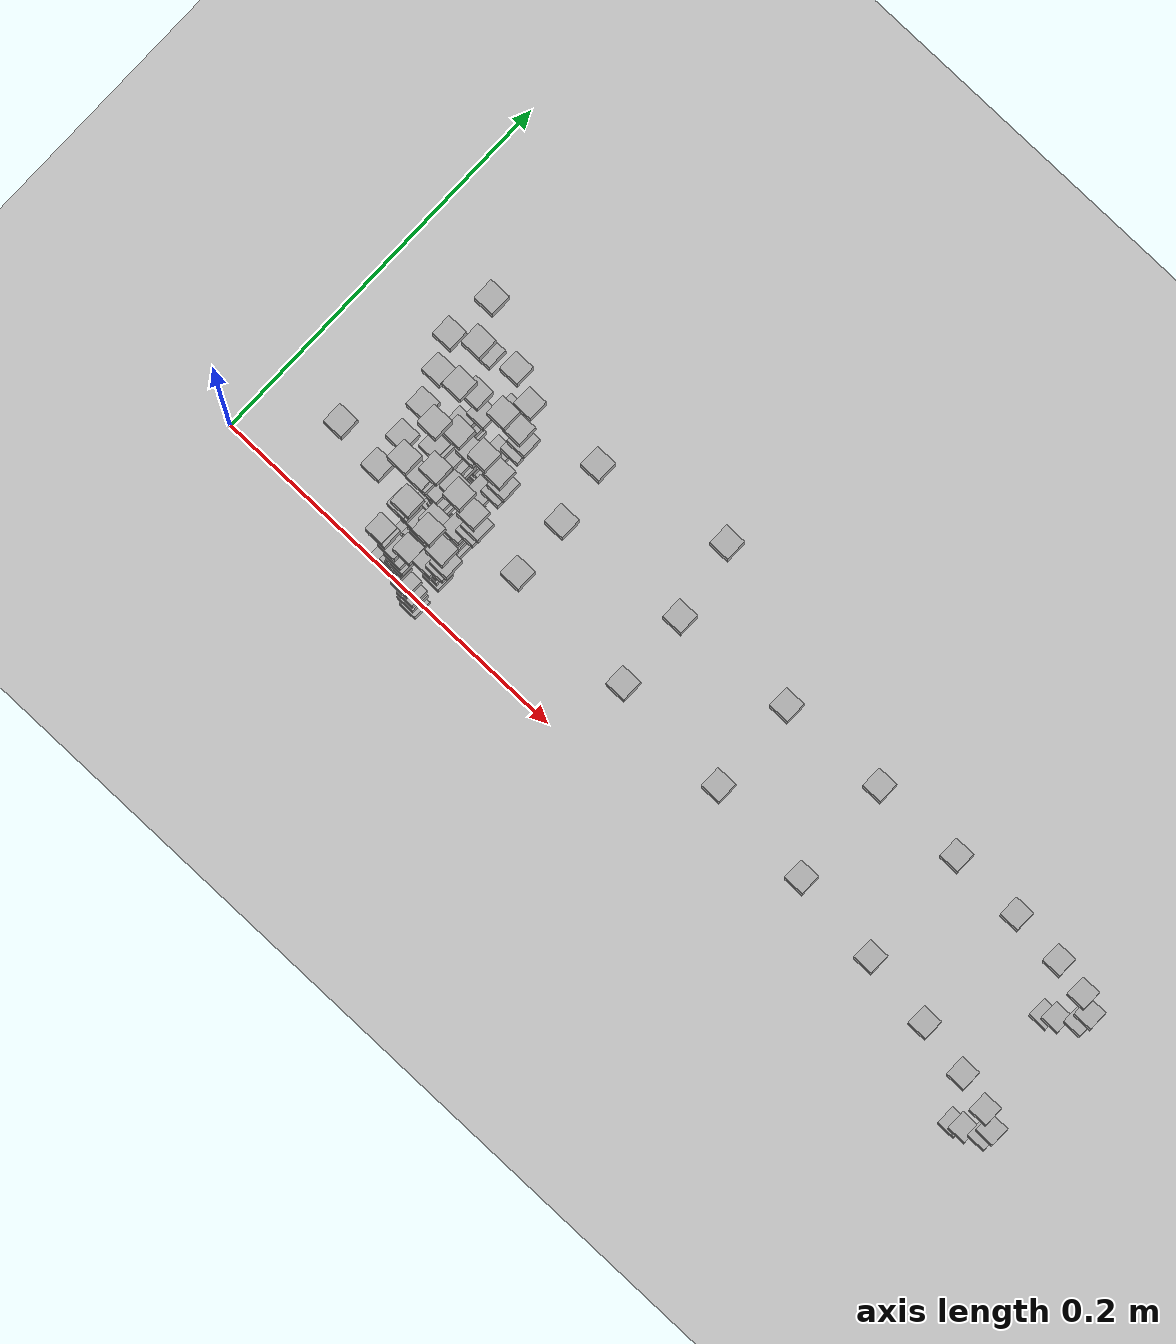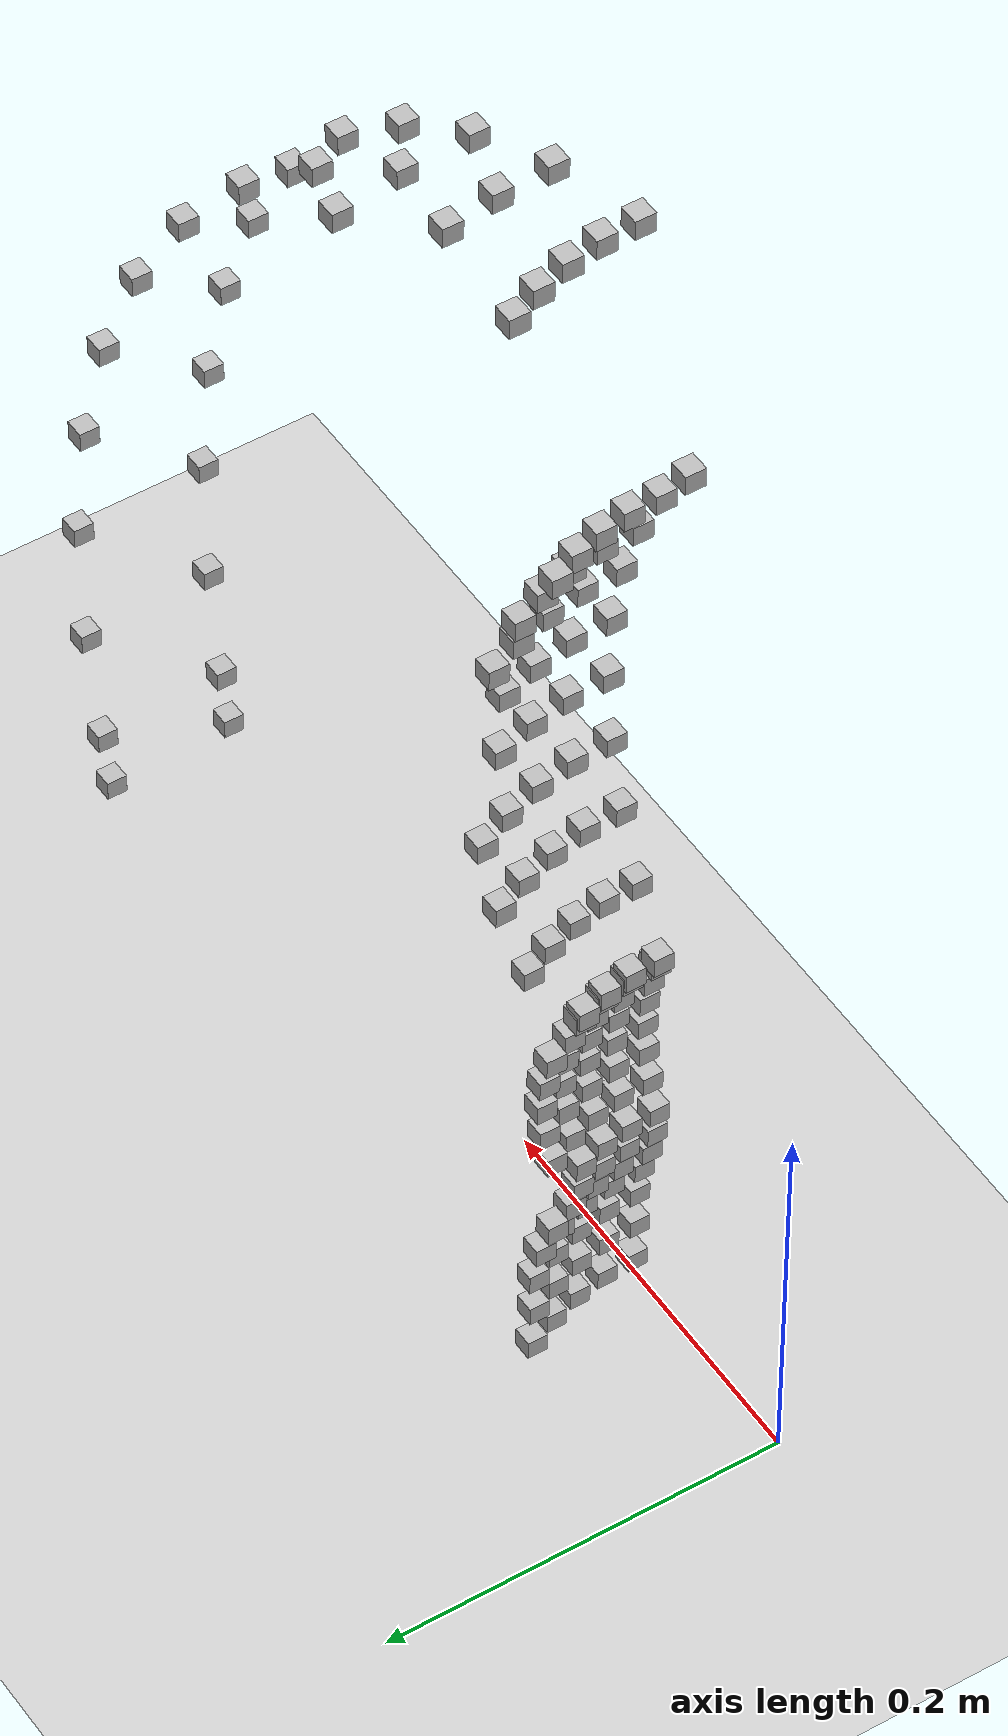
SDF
<sdf version="1.6">
 <world name="default">
  <model name="ground_plane">
   <static>1</static>
   <link name="link">
    <collision name="collision">
     <geometry><plane><normal>0 0 1</normal><size>100 100</size></plane></geometry>
     <surface>
      <contact><collide_bitmask>65535</collide_bitmask></contact>
      <friction><ode><mu>100</mu><mu2>50</mu2></ode></friction>
     </surface>
    </collision>
    <visual name="visual">
     <cast_shadows>0</cast_shadows>
     <geometry><plane><normal>0 0 1</normal><size>100 100</size></plane></geometry>
     <material>
      <script><uri>file://media/materials/scripts/gazebo.material</uri><name>Gazebo/Grey</name></script>
     </material>
    </visual>
   </link>
  </model>
  <model name="box_1685262135_65841">
   <pose>0.45965063341047574 -0.008023231650476192 0.031024085780011867 0.0 0.0 0.0</pose>
   <static>1</static>
   <link name="box_1685262135_65841_link">
    <visual name="visual"><geometry><box><size>0.01 0.01 0.01</size></box></geometry></visual>
   </link>
  </model>
  <model name="box_1685262135_658426">
   <pose>0.456293963071749 0.05602585389841087 0.031024085780011867 0.0 0.0 0.0</pose>
   <static>1</static>
   <link name="box_1685262135_658426_link">
    <visual name="visual"><geometry><box><size>0.01 0.01 0.01</size></box></geometry></visual>
   </link>
  </model>
  <model name="box_1685262135_6591437">
   <pose>0.46517764880695317 -0.008119706063080965 0.05746253559996678 0.0 0.0 0.0</pose>
   <static>1</static>
   <link name="box_1685262135_6591437_link">
    <visual name="visual"><geometry><box><size>0.01 0.01 0.01</size></box></geometry></visual>
   </link>
  </model>
  <model name="box_1685262135_6591601">
   <pose>0.46178061657748914 0.05669953023993955 0.05746253559996678 0.0 0.0 0.0</pose>
   <static>1</static>
   <link name="box_1685262135_6591601_link">
    <visual name="visual"><geometry><box><size>0.01 0.01 0.01</size></box></geometry></visual>
   </link>
  </model>
  <model name="box_1685262135_65989">
   <pose>0.4749609515579795 -0.008290474247812539 0.11486971929344875 0.0 0.0 0.0</pose>
   <static>1</static>
   <link name="box_1685262135_65989_link">
    <visual name="visual"><geometry><box><size>0.01 0.01 0.01</size></box></geometry></visual>
   </link>
  </model>
  <model name="box_1685262135_659906">
   <pose>0.4714924752364765 0.05789199654093439 0.11486971929344875 0.0 0.0 0.0</pose>
   <static>1</static>
   <link name="box_1685262135_659906_link">
    <visual name="visual"><geometry><box><size>0.01 0.01 0.01</size></box></geometry></visual>
   </link>
  </model>
  <model name="box_1685262135_6606123">
   <pose>0.47749765168593417 -0.008334752513249406 0.18152491402812204 0.0 0.0 0.0</pose>
   <static>1</static>
   <link name="box_1685262135_6606123_link">
    <visual name="visual"><geometry><box><size>0.01 0.01 0.01</size></box></geometry></visual>
   </link>
  </model>
  <model name="box_1685262135_6606283">
   <pose>0.47401065071666865 0.05820118961154624 0.18152491402812204 0.0 0.0 0.0</pose>
   <static>1</static>
   <link name="box_1685262135_6606283_link">
    <visual name="visual"><geometry><box><size>0.01 0.01 0.01</size></box></geometry></visual>
   </link>
  </model>
  <model name="box_1685262135_661348">
   <pose>0.47072656110005917 -0.008216562687438114 0.24785452819062248 0.0 0.0 0.0</pose>
   <static>1</static>
   <link name="box_1685262135_661348_link">
    <visual name="visual"><geometry><box><size>0.01 0.01 0.01</size></box></geometry></visual>
   </link>
  </model>
  <model name="box_1685262135_661369">
   <pose>0.4672890070743599 0.05737587554837956 0.24785452819062248 0.0 0.0 0.0</pose>
   <static>1</static>
   <link name="box_1685262135_661369_link">
    <visual name="visual"><geometry><box><size>0.01 0.01 0.01</size></box></geometry></visual>
   </link>
  </model>
  <model name="box_1685262135_6620953">
   <pose>0.45477508151139073 -0.007938128575516769 0.31265492137086764 0.0 0.0 0.0</pose>
   <static>1</static>
   <link name="box_1685262135_6620953_link">
    <visual name="visual"><geometry><box><size>0.01 0.01 0.01</size></box></geometry></visual>
   </link>
  </model>
  <model name="box_1685262135_6621113">
   <pose>0.45145401564974946 0.05543158307940751 0.31265492137086764 0.0 0.0 0.0</pose>
   <static>1</static>
   <link name="box_1685262135_6621113_link">
    <visual name="visual"><geometry><box><size>0.01 0.01 0.01</size></box></geometry></visual>
   </link>
  </model>
  <model name="box_1685262135_6628413">
   <pose>0.4299980428838808 -0.007505643757544629 0.37450685986133164 0.0 0.0 0.0</pose>
   <static>1</static>
   <link name="box_1685262135_6628413_link">
    <visual name="visual"><geometry><box><size>0.01 0.01 0.01</size></box></geometry></visual>
   </link>
  </model>
  <model name="box_1685262135_6628633">
   <pose>0.4268579152057146 0.05241156168646295 0.37450685986133164 0.0 0.0 0.0</pose>
   <static>1</static>
   <link name="box_1685262135_6628633_link">
    <visual name="visual"><geometry><box><size>0.01 0.01 0.01</size></box></geometry></visual>
   </link>
  </model>
  <model name="box_1685262135_6635816">
   <pose>0.11814432360705267 -0.002062216839461454 0.005648136022940203 0.0 0.0 0.0</pose>
   <static>1</static>
   <link name="box_1685262135_6635816_link">
    <visual name="visual"><geometry><box><size>0.01 0.01 0.01</size></box></geometry></visual>
   </link>
  </model>
  <model name="box_1685262135_6635978">
   <pose>0.11728155628353507 0.014400364390283145 0.005648136022940203 0.0 0.0 0.0</pose>
   <static>1</static>
   <link name="box_1685262135_6635978_link">
    <visual name="visual"><geometry><box><size>0.01 0.01 0.01</size></box></geometry></visual>
   </link>
  </model>
  <model name="box_1685262135_6636138">
   <pose>0.11413603687275145 0.030582658907342592 0.005648136022940203 0.0 0.0 0.0</pose>
   <static>1</static>
   <link name="box_1685262135_6636138_link">
    <visual name="visual"><geometry><box><size>0.01 0.01 0.01</size></box></geometry></visual>
   </link>
  </model>
  <model name="box_1685262135_6636298">
   <pose>0.1087689893320574 0.04616969675602952 0.005648136022940203 0.0 0.0 0.0</pose>
   <static>1</static>
   <link name="box_1685262135_6636298_link">
    <visual name="visual"><geometry><box><size>0.01 0.01 0.01</size></box></geometry></visual>
   </link>
  </model>
  <model name="box_1685262135_6636457">
   <pose>0.10128487713690645 0.060858093974612004 0.005648136022940203 0.0 0.0 0.0</pose>
   <static>1</static>
   <link name="box_1685262135_6636457_link">
    <visual name="visual"><geometry><box><size>0.01 0.01 0.01</size></box></geometry></visual>
   </link>
  </model>
  <model name="box_1685262135_6643064">
   <pose>0.396794296954735 -0.006926070216491348 0.4324042100445494 0.0 0.0 0.0</pose>
   <static>1</static>
   <link name="box_1685262135_6643064_link">
    <visual name="visual"><geometry><box><size>0.01 0.01 0.01</size></box></geometry></visual>
   </link>
  </model>
  <model name="box_1685262135_6643305">
   <pose>0.3938966448025308 0.04836442657320612 0.4324042100445494 0.0 0.0 0.0</pose>
   <static>1</static>
   <link name="box_1685262135_6643305_link">
    <visual name="visual"><geometry><box><size>0.01 0.01 0.01</size></box></geometry></visual>
   </link>
  </model>
  <model name="box_1685262135_6650493">
   <pose>0.11754053076730298 -0.00205167759624043 0.02920890265866033 0.0 0.0 0.0</pose>
   <static>1</static>
   <link name="box_1685262135_6650493_link">
    <visual name="visual"><geometry><box><size>0.01 0.01 0.01</size></box></geometry></visual>
   </link>
  </model>
  <model name="box_1685262135_6650662">
   <pose>0.1166821727350353 0.014326769344468176 0.02920890265866033 0.0 0.0 0.0</pose>
   <static>1</static>
   <link name="box_1685262135_6650662_link">
    <visual name="visual"><geometry><box><size>0.01 0.01 0.01</size></box></geometry></visual>
   </link>
  </model>
  <model name="box_1685262135_6650822">
   <pose>0.11355272893448448 0.030426362016345295 0.02920890265866033 0.0 0.0 0.0</pose>
   <static>1</static>
   <link name="box_1685262135_6650822_link">
    <visual name="visual"><geometry><box><size>0.01 0.01 0.01</size></box></geometry></visual>
   </link>
  </model>
  <model name="box_1685262135_6650982">
   <pose>0.10821311042953867 0.04593374016104808 0.02920890265866033 0.0 0.0 0.0</pose>
   <static>1</static>
   <link name="box_1685262135_6650982_link">
    <visual name="visual"><geometry><box><size>0.01 0.01 0.01</size></box></geometry></visual>
   </link>
  </model>
  <model name="box_1685262135_6651144">
   <pose>0.10076724682067058 0.06054707030237108 0.02920890265866033 0.0 0.0 0.0</pose>
   <static>1</static>
   <link name="box_1685262135_6651144_link">
    <visual name="visual"><geometry><box><size>0.01 0.01 0.01</size></box></geometry></visual>
   </link>
  </model>
  <model name="box_1685262135_665789">
   <pose>0.3558031404243957 -0.006210566917771546 0.4851615351605009 0.0 0.0 0.0</pose>
   <static>1</static>
   <link name="box_1685262135_665789_link">
    <visual name="visual"><geometry><box><size>0.01 0.01 0.01</size></box></geometry></visual>
   </link>
  </model>
  <model name="box_1685262135_6658056">
   <pose>0.3532048325769183 0.04336810027674085 0.4851615351605009 0.0 0.0 0.0</pose>
   <static>1</static>
   <link name="box_1685262135_6658056_link">
    <visual name="visual"><geometry><box><size>0.01 0.01 0.01</size></box></geometry></visual>
   </link>
  </model>
  <model name="box_1685262135_6665294">
   <pose>0.11781227743468152 -0.0020564209519635494 0.05028140928145608 0.0 0.0 0.0</pose>
   <static>1</static>
   <link name="box_1685262135_6665294_link">
    <visual name="visual"><geometry><box><size>0.01 0.01 0.01</size></box></geometry></visual>
   </link>
  </model>
  <model name="box_1685262135_6665466">
   <pose>0.11695193493005215 0.014359891977131525 0.05028140928145608 0.0 0.0 0.0</pose>
   <static>1</static>
   <link name="box_1685262135_6665466_link">
    <visual name="visual"><geometry><box><size>0.01 0.01 0.01</size></box></geometry></visual>
   </link>
  </model>
  <model name="box_1685262135_6665628">
   <pose>0.1138152560428636 0.030496705943026756 0.05028140928145608 0.0 0.0 0.0</pose>
   <static>1</static>
   <link name="box_1685262135_6665628_link">
    <visual name="visual"><geometry><box><size>0.01 0.01 0.01</size></box></geometry></visual>
   </link>
  </model>
  <model name="box_1685262135_666579">
   <pose>0.10846329265973559 0.04603993621722983 0.05028140928145608 0.0 0.0 0.0</pose>
   <static>1</static>
   <link name="box_1685262135_666579_link">
    <visual name="visual"><geometry><box><size>0.01 0.01 0.01</size></box></geometry></visual>
   </link>
  </model>
  <model name="box_1685262135_6665947">
   <pose>0.1010002146601526 0.06068705150261577 0.05028140928145608 0.0 0.0 0.0</pose>
   <static>1</static>
   <link name="box_1685262135_6665947_link">
    <visual name="visual"><geometry><box><size>0.01 0.01 0.01</size></box></geometry></visual>
   </link>
  </model>
  <model name="box_1685262135_6672573">
   <pose>0.3078549334683411 -0.005373627852161999 0.5316791207351375 0.0 0.0 0.0</pose>
   <static>1</static>
   <link name="box_1685262135_6672573_link">
    <visual name="visual"><geometry><box><size>0.01 0.01 0.01</size></box></geometry></visual>
   </link>
  </model>
  <model name="box_1685262135_6672742">
   <pose>0.3056067748698495 0.03752379366134729 0.5316791207351375 0.0 0.0 0.0</pose>
   <static>1</static>
   <link name="box_1685262135_6672742_link">
    <visual name="visual"><geometry><box><size>0.01 0.01 0.01</size></box></geometry></visual>
   </link>
  </model>
  <model name="box_1685262135_6679976">
   <pose>0.11488106693972355 -0.002005256482455785 0.06994559093984248 0.0 0.0 0.0</pose>
   <static>1</static>
   <link name="box_1685262135_6679976_link">
    <visual name="visual"><geometry><box><size>0.01 0.01 0.01</size></box></geometry></visual>
   </link>
  </model>
  <model name="box_1685262135_6680164">
   <pose>0.11404213005625473 0.014002612863389175 0.06994559093984248 0.0 0.0 0.0</pose>
   <static>1</static>
   <link name="box_1685262135_6680164_link">
    <visual name="visual"><geometry><box><size>0.01 0.01 0.01</size></box></geometry></visual>
   </link>
  </model>
  <model name="box_1685262135_6680331">
   <pose>0.1109834928322412 0.029737937277584323 0.06994559093984248 0.0 0.0 0.0</pose>
   <static>1</static>
   <link name="box_1685262135_6680331_link">
    <visual name="visual"><geometry><box><size>0.01 0.01 0.01</size></box></geometry></visual>
   </link>
  </model>
  <model name="box_1685262135_6680493">
   <pose>0.10576468816210008 0.04489444656907358 0.06994559093984248 0.0 0.0 0.0</pose>
   <static>1</static>
   <link name="box_1685262135_6680493_link">
    <visual name="visual"><geometry><box><size>0.01 0.01 0.01</size></box></geometry></visual>
   </link>
  </model>
  <model name="box_1685262135_6680655">
   <pose>0.09848729414243332 0.0591771365247719 0.06994559093984248 0.0 0.0 0.0</pose>
   <static>1</static>
   <link name="box_1685262135_6680655_link">
    <visual name="visual"><geometry><box><size>0.01 0.01 0.01</size></box></geometry></visual>
   </link>
  </model>
  <model name="box_1685262135_6687288">
   <pose>0.2539392098049922 -0.004432525394966406 0.5710245451470004 0.0 0.0 0.0</pose>
   <static>1</static>
   <link name="box_1685262135_6687288_link">
    <visual name="visual"><geometry><box><size>0.01 0.01 0.01</size></box></geometry></visual>
   </link>
  </model>
  <model name="box_1685262135_6687472">
   <pose>0.25208477917565175 0.030952118921388064 0.5710245451470004 0.0 0.0 0.0</pose>
   <static>1</static>
   <link name="box_1685262135_6687472_link">
    <visual name="visual"><geometry><box><size>0.01 0.01 0.01</size></box></geometry></visual>
   </link>
  </model>
  <model name="box_1685262135_668764">
   <pose>0.2453238050618436 0.06573431545045115 0.5710245451470004 0.0 0.0 0.0</pose>
   <static>1</static>
   <link name="box_1685262135_668764_link">
    <visual name="visual"><geometry><box><size>0.01 0.01 0.01</size></box></geometry></visual>
   </link>
  </model>
  <model name="box_1685262135_6696692">
   <pose>0.10923046754161435 -0.0019066249030784419 0.08776207523471741 0.0 0.0 0.0</pose>
   <static>1</static>
   <link name="box_1685262135_6696692_link">
    <visual name="visual"><geometry><box><size>0.01 0.01 0.01</size></box></geometry></visual>
   </link>
  </model>
  <model name="box_1685262135_6696866">
   <pose>0.10843279504030233 0.013313873126498173 0.08776207523471741 0.0 0.0 0.0</pose>
   <static>1</static>
   <link name="box_1685262135_6696866_link">
    <visual name="visual"><geometry><box><size>0.01 0.01 0.01</size></box></geometry></visual>
   </link>
  </model>
  <model name="box_1685262135_6697059">
   <pose>0.10552460152400708 0.028275231759973717 0.08776207523471741 0.0 0.0 0.0</pose>
   <static>1</static>
   <link name="box_1685262135_6697059_link">
    <visual name="visual"><geometry><box><size>0.01 0.01 0.01</size></box></geometry></visual>
   </link>
  </model>
  <model name="box_1685262135_669724">
   <pose>0.1005624916715022 0.0426862451698408 0.08776207523471741 0.0 0.0 0.0</pose>
   <static>1</static>
   <link name="box_1685262135_669724_link">
    <visual name="visual"><geometry><box><size>0.01 0.01 0.01</size></box></geometry></visual>
   </link>
  </model>
  <model name="box_1685262135_6697402">
   <pose>0.09364304730675037 0.05626641937236115 0.08776207523471741 0.0 0.0 0.0</pose>
   <static>1</static>
   <link name="box_1685262135_6697402_link">
    <visual name="visual"><geometry><box><size>0.01 0.01 0.01</size></box></geometry></visual>
   </link>
  </model>
  <model name="box_1685262135_6705096">
   <pose>0.1949537700088561 -0.0034029307135053813 0.6025204345093003 0.0 0.0 0.0</pose>
   <static>1</static>
   <link name="box_1685262135_6705096_link">
    <visual name="visual"><geometry><box><size>0.01 0.01 0.01</size></box></geometry></visual>
   </link>
  </model>
  <model name="box_1685262135_6705265">
   <pose>0.193530089740309 0.02376250709026356 0.6025204345093003 0.0 0.0 0.0</pose>
   <static>1</static>
   <link name="box_1685262135_6705265_link">
    <visual name="visual"><geometry><box><size>0.01 0.01 0.01</size></box></geometry></visual>
   </link>
  </model>
  <model name="box_1685262135_6705453">
   <pose>0.18833956641218105 0.050465434722971714 0.6025204345093003 0.0 0.0 0.0</pose>
   <static>1</static>
   <link name="box_1685262135_6705453_link">
    <visual name="visual"><geometry><box><size>0.01 0.01 0.01</size></box></geometry></visual>
   </link>
  </model>
  <model name="box_1685262135_6713073">
   <pose>0.10560265455620015 -0.001843301191870606 0.10333120046485805 0.0 0.0 0.0</pose>
   <static>1</static>
   <link name="box_1685262135_6713073_link">
    <visual name="visual"><geometry><box><size>0.01 0.01 0.01</size></box></geometry></visual>
   </link>
  </model>
  <model name="box_1685262135_6713243">
   <pose>0.10483147472422752 0.012871686592818218 0.10333120046485805 0.0 0.0 0.0</pose>
   <static>1</static>
   <link name="box_1685262135_6713243_link">
    <visual name="visual"><geometry><box><size>0.01 0.01 0.01</size></box></geometry></visual>
   </link>
  </model>
  <model name="box_1685262135_6713457">
   <pose>0.10201986948078293 0.027336141639304323 0.10333120046485805 0.0 0.0 0.0</pose>
   <static>1</static>
   <link name="box_1685262135_6713457_link">
    <visual name="visual"><geometry><box><size>0.01 0.01 0.01</size></box></geometry></visual>
   </link>
  </model>
  <model name="box_1685262135_671376">
   <pose>0.09722256352377644 0.041268529783181615 0.10333120046485805 0.0 0.0 0.0</pose>
   <static>1</static>
   <link name="box_1685262135_671376_link">
    <visual name="visual"><geometry><box><size>0.01 0.01 0.01</size></box></geometry></visual>
   </link>
  </model>
  <model name="box_1685262135_6720765">
   <pose>0.13223202120480723 -0.002308118515719355 0.6254485040649695 0.0 0.0 0.0</pose>
   <static>1</static>
   <link name="box_1685262135_6720765_link">
    <visual name="visual"><geometry><box><size>0.01 0.01 0.01</size></box></geometry></visual>
   </link>
  </model>
  <model name="box_1685262135_672093">
   <pose>0.13126637627549484 0.016117484372302086 0.6254485040649695 0.0 0.0 0.0</pose>
   <static>1</static>
   <link name="box_1685262135_672093_link">
    <visual name="visual"><geometry><box><size>0.01 0.01 0.01</size></box></geometry></visual>
   </link>
  </model>
  <model name="box_1685262135_6721091">
   <pose>0.1277457806452699 0.03422937876038341 0.6254485040649695 0.0 0.0 0.0</pose>
   <static>1</static>
   <link name="box_1685262135_6721091_link">
    <visual name="visual"><geometry><box><size>0.01 0.01 0.01</size></box></geometry></visual>
   </link>
  </model>
  <model name="box_1685262135_6721277">
   <pose>0.12173875870345653 0.05167503722623512 0.6254485040649695 0.0 0.0 0.0</pose>
   <static>1</static>
   <link name="box_1685262135_6721277_link">
    <visual name="visual"><geometry><box><size>0.01 0.01 0.01</size></box></geometry></visual>
   </link>
  </model>
  <model name="box_1685262135_672145">
   <pose>0.11336223029926597 0.0681148998719618 0.6254485040649695 0.0 0.0 0.0</pose>
   <static>1</static>
   <link name="box_1685262135_672145_link">
    <visual name="visual"><geometry><box><size>0.01 0.01 0.01</size></box></geometry></visual>
   </link>
  </model>
  <model name="box_1685262135_6728663">
   <pose>0.10439815759678209 -0.0018222766192381233 0.1175214826546544 0.0 0.0 0.0</pose>
   <static>1</static>
   <link name="box_1685262135_6728663_link">
    <visual name="visual"><geometry><box><size>0.01 0.01 0.01</size></box></geometry></visual>
   </link>
  </model>
  <model name="box_1685262135_6728845">
   <pose>0.10363577379144989 0.012724872978815922 0.1175214826546544 0.0 0.0 0.0</pose>
   <static>1</static>
   <link name="box_1685262135_6728845_link">
    <visual name="visual"><geometry><box><size>0.01 0.01 0.01</size></box></geometry></visual>
   </link>
  </model>
  <model name="box_1685262135_6729012">
   <pose>0.10085623753321257 0.027024347398665795 0.1175214826546544 0.0 0.0 0.0</pose>
   <static>1</static>
   <link name="box_1685262135_6729012_link">
    <visual name="visual"><geometry><box><size>0.01 0.01 0.01</size></box></geometry></visual>
   </link>
  </model>
  <model name="box_1685262135_672918">
   <pose>0.09611364933366111 0.04079782363614019 0.1175214826546544 0.0 0.0 0.0</pose>
   <static>1</static>
   <link name="box_1685262135_672918_link">
    <visual name="visual"><geometry><box><size>0.01 0.01 0.01</size></box></geometry></visual>
   </link>
  </model>
  <model name="box_1685262135_674398">
   <pose>0.11020626320963565 -0.0019236574798204272 0.13255102465284446 0.0 0.0 0.0</pose>
   <static>1</static>
   <link name="box_1685262135_674398_link">
    <visual name="visual"><geometry><box><size>0.01 0.01 0.01</size></box></geometry></visual>
   </link>
  </model>
  <model name="box_1685262135_6744149">
   <pose>0.1094014648084827 0.013432810818644118 0.13255102465284446 0.0 0.0 0.0</pose>
   <static>1</static>
   <link name="box_1685262135_6744149_link">
    <visual name="visual"><geometry><box><size>0.01 0.01 0.01</size></box></geometry></visual>
   </link>
  </model>
  <model name="box_1685262135_674432">
   <pose>0.10646729133715442 0.028527824734119592 0.13255102465284446 0.0 0.0 0.0</pose>
   <static>1</static>
   <link name="box_1685262135_674432_link">
    <visual name="visual"><geometry><box><size>0.01 0.01 0.01</size></box></geometry></visual>
   </link>
  </model>
  <model name="box_1685262135_674448">
   <pose>0.10146085314469735 0.0430675769910651 0.13255102465284446 0.0 0.0 0.0</pose>
   <static>1</static>
   <link name="box_1685262135_674448_link">
    <visual name="visual"><geometry><box><size>0.01 0.01 0.01</size></box></geometry></visual>
   </link>
  </model>
  <model name="box_1685262135_674464">
   <pose>0.09447959485578863 0.05676906785052226 0.13255102465284446 0.0 0.0 0.0</pose>
   <static>1</static>
   <link name="box_1685262135_674464_link">
    <visual name="visual"><geometry><box><size>0.01 0.01 0.01</size></box></geometry></visual>
   </link>
  </model>
  <model name="box_1685262135_675958">
   <pose>0.11384427512858478 -0.0019871592140753135 0.14825398363050718 0.0 0.0 0.0</pose>
   <static>1</static>
   <link name="box_1685262135_675958_link">
    <visual name="visual"><geometry><box><size>0.01 0.01 0.01</size></box></geometry></visual>
   </link>
  </model>
  <model name="box_1685262135_6759756">
   <pose>0.11301290957879186 0.013876240478991619 0.14825398363050718 0.0 0.0 0.0</pose>
   <static>1</static>
   <link name="box_1685262135_6759756_link">
    <visual name="visual"><geometry><box><size>0.01 0.01 0.01</size></box></geometry></visual>
   </link>
  </model>
  <model name="box_1685262135_675992">
   <pose>0.10998187629432708 0.029469554935124577 0.14825398363050718 0.0 0.0 0.0</pose>
   <static>1</static>
   <link name="box_1685262135_675992_link">
    <visual name="visual"><geometry><box><size>0.01 0.01 0.01</size></box></geometry></visual>
   </link>
  </model>
  <model name="box_1685262135_6760085">
   <pose>0.1048101708903233 0.044489278025567236 0.14825398363050718 0.0 0.0 0.0</pose>
   <static>1</static>
   <link name="box_1685262135_6760085_link">
    <visual name="visual"><geometry><box><size>0.01 0.01 0.01</size></box></geometry></visual>
   </link>
  </model>
  <model name="box_1685262135_676025">
   <pose>0.09759845472974171 0.05864306792504592 0.14825398363050718 0.0 0.0 0.0</pose>
   <static>1</static>
   <link name="box_1685262135_676025_link">
    <visual name="visual"><geometry><box><size>0.01 0.01 0.01</size></box></geometry></visual>
   </link>
  </model>
  <model name="box_1685262135_6767972">
   <pose>0.11523906343915395 -0.0020115053345974173 0.16428489958480497 0.0 0.0 0.0</pose>
   <static>1</static>
   <link name="box_1685262135_6767972_link">
    <visual name="visual"><geometry><box><size>0.01 0.01 0.01</size></box></geometry></visual>
   </link>
  </model>
  <model name="box_1685262135_6768162">
   <pose>0.11439751223049191 0.014046248307605607 0.16428489958480497 0.0 0.0 0.0</pose>
   <static>1</static>
   <link name="box_1685262135_6768162_link">
    <visual name="visual"><geometry><box><size>0.01 0.01 0.01</size></box></geometry></visual>
   </link>
  </model>
  <model name="box_1685262135_6768422">
   <pose>0.11132934357150485 0.029830607703871727 0.16428489958480497 0.0 0.0 0.0</pose>
   <static>1</static>
   <link name="box_1685262135_6768422_link">
    <visual name="visual"><geometry><box><size>0.01 0.01 0.01</size></box></geometry></visual>
   </link>
  </model>
  <model name="box_1685262135_6768606">
   <pose>0.10609427587514983 0.04503434825299532 0.16428489958480497 0.0 0.0 0.0</pose>
   <static>1</static>
   <link name="box_1685262135_6768606_link">
    <visual name="visual"><geometry><box><size>0.01 0.01 0.01</size></box></geometry></visual>
   </link>
  </model>
  <model name="box_1685262135_676877">
   <pose>0.09879420377933514 0.059361546439186244 0.16428489958480497 0.0 0.0 0.0</pose>
   <static>1</static>
   <link name="box_1685262135_676877_link">
    <visual name="visual"><geometry><box><size>0.01 0.01 0.01</size></box></geometry></visual>
   </link>
  </model>
  <model name="box_1685262135_6775537">
   <pose>0.11440091782557253 -0.001996875448493053 0.18035913689155542 0.0 0.0 0.0</pose>
   <static>1</static>
   <link name="box_1685262135_6775537_link">
    <visual name="visual"><geometry><box><size>0.01 0.01 0.01</size></box></geometry></visual>
   </link>
  </model>
  <model name="box_1685262135_67757">
   <pose>0.1135654873057906 0.013944088492565882 0.18035913689155542 0.0 0.0 0.0</pose>
   <static>1</static>
   <link name="box_1685262135_67757_link">
    <visual name="visual"><geometry><box><size>0.01 0.01 0.01</size></box></geometry></visual>
   </link>
  </model>
  <model name="box_1685262135_677586">
   <pose>0.11051963375442862 0.029613646612282597 0.18035913689155542 0.0 0.0 0.0</pose>
   <static>1</static>
   <link name="box_1685262135_677586_link">
    <visual name="visual"><geometry><box><size>0.01 0.01 0.01</size></box></geometry></visual>
   </link>
  </model>
  <model name="box_1685262135_6776023">
   <pose>0.10532264124625679 0.04470680878571498 0.18035913689155542 0.0 0.0 0.0</pose>
   <static>1</static>
   <link name="box_1685262135_6776023_link">
    <visual name="visual"><geometry><box><size>0.01 0.01 0.01</size></box></geometry></visual>
   </link>
  </model>
  <model name="box_1685262135_6776185">
   <pose>0.09807566332895531 0.058929803779374686 0.18035913689155542 0.0 0.0 0.0</pose>
   <static>1</static>
   <link name="box_1685262135_6776185_link">
    <visual name="visual"><geometry><box><size>0.01 0.01 0.01</size></box></geometry></visual>
   </link>
  </model>
  <model name="box_1685262135_6782932">
   <pose>0.1113315079367901 -0.0019432986995930426 0.19617448160834577 0.0 0.0 0.0</pose>
   <static>1</static>
   <link name="box_1685262135_6782932_link">
    <visual name="visual"><geometry><box><size>0.01 0.01 0.01</size></box></geometry></visual>
   </link>
  </model>
  <model name="box_1685262135_678315">
   <pose>0.11051849226076596 0.013569964543889208 0.19617448160834577 0.0 0.0 0.0</pose>
   <static>1</static>
   <link name="box_1685262135_678315_link">
    <visual name="visual"><geometry><box><size>0.01 0.01 0.01</size></box></geometry></visual>
   </link>
  </model>
  <model name="box_1685262135_6783404">
   <pose>0.1075543598458077 0.02881910386313054 0.19617448160834577 0.0 0.0 0.0</pose>
   <static>1</static>
   <link name="box_1685262135_6783404_link">
    <visual name="visual"><geometry><box><size>0.01 0.01 0.01</size></box></geometry></visual>
   </link>
  </model>
  <model name="box_1685262135_6783586">
   <pose>0.1024968041577218 0.04350731210692081 0.19617448160834577 0.0 0.0 0.0</pose>
   <static>1</static>
   <link name="box_1685262135_6783586_link">
    <visual name="visual"><geometry><box><size>0.01 0.01 0.01</size></box></geometry></visual>
   </link>
  </model>
  <model name="box_1685262135_6783748">
   <pose>0.09544426476509256 0.05734870000938388 0.19617448160834577 0.0 0.0 0.0</pose>
   <static>1</static>
   <link name="box_1685262135_6783748_link">
    <visual name="visual"><geometry><box><size>0.01 0.01 0.01</size></box></geometry></visual>
   </link>
  </model>
  <model name="box_1685262135_679046">
   <pose>0.10607680992834241 -0.0018515776046774124 0.2113835132273968 0.0 0.0 0.0</pose>
   <static>1</static>
   <link name="box_1685262135_679046_link">
    <visual name="visual"><geometry><box><size>0.01 0.01 0.01</size></box></geometry></visual>
   </link>
  </model>
  <model name="box_1685262135_6790626">
   <pose>0.10530216750291742 0.012929480398969824 0.2113835132273968 0.0 0.0 0.0</pose>
   <static>1</static>
   <link name="box_1685262135_6790626_link">
    <visual name="visual"><geometry><box><size>0.01 0.01 0.01</size></box></geometry></visual>
   </link>
  </model>
  <model name="box_1685262135_6790786">
   <pose>0.10247793816648837 0.027458880773717085 0.2113835132273968 0.0 0.0 0.0</pose>
   <static>1</static>
   <link name="box_1685262135_6790786_link">
    <visual name="visual"><geometry><box><size>0.01 0.01 0.01</size></box></geometry></visual>
   </link>
  </model>
  <model name="box_1685262135_6790948">
   <pose>0.09765909233057557 0.04145382526821788 0.2113835132273968 0.0 0.0 0.0</pose>
   <static>1</static>
   <link name="box_1685262135_6790948_link">
    <visual name="visual"><geometry><box><size>0.01 0.01 0.01</size></box></geometry></visual>
   </link>
  </model>
  <model name="box_1685262135_6797843">
   <pose>0.10443935289668506 -0.0018229956858726668 0.21508165296930842 0.0 0.0 0.0</pose>
   <static>1</static>
   <link name="box_1685262135_6797843_link">
    <visual name="visual"><geometry><box><size>0.01 0.01 0.01</size></box></geometry></visual>
   </link>
  </model>
  <model name="box_1685262135_6798007">
   <pose>0.10367666825625935 0.012729894187720912 0.21508165296930842 0.0 0.0 0.0</pose>
   <static>1</static>
   <link name="box_1685262135_6798007_link">
    <visual name="visual"><geometry><box><size>0.01 0.01 0.01</size></box></geometry></visual>
   </link>
  </model>
  <model name="box_1685262135_67982">
   <pose>0.10089603519868778 0.02703501115099052 0.21508165296930842 0.0 0.0 0.0</pose>
   <static>1</static>
   <link name="box_1685262135_67982_link">
    <visual name="visual"><geometry><box><size>0.01 0.01 0.01</size></box></geometry></visual>
   </link>
  </model>
  <model name="box_1685262135_6798441">
   <pose>0.09615157558351276 0.040813922374075495 0.21508165296930842 0.0 0.0 0.0</pose>
   <static>1</static>
   <link name="box_1685262135_6798441_link">
    <visual name="visual"><geometry><box><size>0.01 0.01 0.01</size></box></geometry></visual>
   </link>
  </model>
  <model name="box_1685262135_6805243">
   <pose>0.12224306028192693 -0.0021337605542450506 0.24636117300793503 0.0 0.0 0.0</pose>
   <static>1</static>
   <link name="box_1685262135_6805243_link">
    <visual name="visual"><geometry><box><size>0.01 0.01 0.01</size></box></geometry></visual>
   </link>
  </model>
  <model name="box_1685262135_680541">
   <pose>0.12135036129548367 0.014899950827074791 0.24636117300793503 0.0 0.0 0.0</pose>
   <static>1</static>
   <link name="box_1685262135_680541_link">
    <visual name="visual"><geometry><box><size>0.01 0.01 0.01</size></box></geometry></visual>
   </link>
  </model>
  <model name="box_1685262135_6805568">
   <pose>0.11809571556041394 0.03164365161398849 0.24636117300793503 0.0 0.0 0.0</pose>
   <static>1</static>
   <link name="box_1685262135_6805568_link">
    <visual name="visual"><geometry><box><size>0.01 0.01 0.01</size></box></geometry></visual>
   </link>
  </model>
  <model name="box_1685262135_6805727">
   <pose>0.11254247105384617 0.04777144471635611 0.24636117300793503 0.0 0.0 0.0</pose>
   <static>1</static>
   <link name="box_1685262135_6805727_link">
    <visual name="visual"><geometry><box><size>0.01 0.01 0.01</size></box></geometry></visual>
   </link>
  </model>
  <model name="box_1685262135_6805887">
   <pose>0.10479871536337872 0.06296942098653283 0.24636117300793503 0.0 0.0 0.0</pose>
   <static>1</static>
   <link name="box_1685262135_6805887_link">
    <visual name="visual"><geometry><box><size>0.01 0.01 0.01</size></box></geometry></visual>
   </link>
  </model>
  <model name="box_1685262135_6812506">
   <pose>0.13555898890129264 -0.00236619095287559 0.2798396861917631 0.0 0.0 0.0</pose>
   <static>1</static>
   <link name="box_1685262135_6812506_link">
    <visual name="visual"><geometry><box><size>0.01 0.01 0.01</size></box></geometry></visual>
   </link>
  </model>
  <model name="box_1685262135_6812675">
   <pose>0.13456904827221836 0.016523001503226102 0.2798396861917631 0.0 0.0 0.0</pose>
   <static>1</static>
   <link name="box_1685262135_6812675_link">
    <visual name="visual"><geometry><box><size>0.01 0.01 0.01</size></box></geometry></visual>
   </link>
  </model>
  <model name="box_1685262135_6812835">
   <pose>0.13095987418854904 0.03509059252970314 0.2798396861917631 0.0 0.0 0.0</pose>
   <static>1</static>
   <link name="box_1685262135_6812835_link">
    <visual name="visual"><geometry><box><size>0.01 0.01 0.01</size></box></geometry></visual>
   </link>
  </model>
  <model name="box_1685262135_6812994">
   <pose>0.12480171511844858 0.0529751850875469 0.2798396861917631 0.0 0.0 0.0</pose>
   <static>1</static>
   <link name="box_1685262135_6812994_link">
    <visual name="visual"><geometry><box><size>0.01 0.01 0.01</size></box></geometry></visual>
   </link>
  </model>
  <model name="box_1685262135_681316">
   <pose>0.1162144326234144 0.06982867592604147 0.2798396861917631 0.0 0.0 0.0</pose>
   <static>1</static>
   <link name="box_1685262135_681316_link">
    <visual name="visual"><geometry><box><size>0.01 0.01 0.01</size></box></geometry></visual>
   </link>
  </model>
  <model name="box_1685262135_682019">
   <pose>0.14406325758653463 -0.0025146335149434968 0.314821790288947 0.0 0.0 0.0</pose>
   <static>1</static>
   <link name="box_1685262135_682019_link">
    <visual name="visual"><geometry><box><size>0.01 0.01 0.01</size></box></geometry></visual>
   </link>
  </model>
  <model name="box_1685262135_682036">
   <pose>0.14301121321088983 0.017559569018290776 0.314821790288947 0.0 0.0 0.0</pose>
   <static>1</static>
   <link name="box_1685262135_682036_link">
    <visual name="visual"><geometry><box><size>0.01 0.01 0.01</size></box></geometry></visual>
   </link>
  </model>
  <model name="box_1685262135_6820517">
   <pose>0.139175618242939 0.03729199451429773 0.314821790288947 0.0 0.0 0.0</pose>
   <static>1</static>
   <link name="box_1685262135_6820517_link">
    <visual name="visual"><geometry><box><size>0.01 0.01 0.01</size></box></geometry></visual>
   </link>
  </model>
  <model name="box_1685262135_6820674">
   <pose>0.13263112817580872 0.05629857375609892 0.314821790288947 0.0 0.0 0.0</pose>
   <static>1</static>
   <link name="box_1685262135_6820674_link">
    <visual name="visual"><geometry><box><size>0.01 0.01 0.01</size></box></geometry></visual>
   </link>
  </model>
  <model name="box_1685262135_6820836">
   <pose>0.12350512406440851 0.07420936529841614 0.314821790288947 0.0 0.0 0.0</pose>
   <static>1</static>
   <link name="box_1685262135_6820836_link">
    <visual name="visual"><geometry><box><size>0.01 0.01 0.01</size></box></geometry></visual>
   </link>
  </model>
  <model name="box_1685262135_682736">
   <pose>0.14762006528458177 -0.002576717824250093 0.3506667056619606 0.0 0.0 0.0</pose>
   <static>1</static>
   <link name="box_1685262135_682736_link">
    <visual name="visual"><geometry><box><size>0.01 0.01 0.01</size></box></geometry></visual>
   </link>
  </model>
  <model name="box_1685262135_6827567">
   <pose>0.14654204676676724 0.017993100866070425 0.3506667056619606 0.0 0.0 0.0</pose>
   <static>1</static>
   <link name="box_1685262135_6827567_link">
    <visual name="visual"><geometry><box><size>0.01 0.01 0.01</size></box></geometry></visual>
   </link>
  </model>
  <model name="box_1685262135_6827736">
   <pose>0.14261175399774523 0.03821270431488177 0.3506667056619606 0.0 0.0 0.0</pose>
   <static>1</static>
   <link name="box_1685262135_6827736_link">
    <visual name="visual"><geometry><box><size>0.01 0.01 0.01</size></box></geometry></visual>
   </link>
  </model>
  <model name="box_1685262135_6827896">
   <pose>0.13590568565562292 0.057688540940510846 0.3506667056619606 0.0 0.0 0.0</pose>
   <static>1</static>
   <link name="box_1685262135_6827896_link">
    <visual name="visual"><geometry><box><size>0.01 0.01 0.01</size></box></geometry></visual>
   </link>
  </model>
  <model name="box_1685262135_6834645">
   <pose>0.14614693757452304 -0.0025510042844234617 0.38661397693110494 0.0 0.0 0.0</pose>
   <static>1</static>
   <link name="box_1685262135_6834645_link">
    <visual name="visual"><geometry><box><size>0.01 0.01 0.01</size></box></geometry></visual>
   </link>
  </model>
  <model name="box_1685262135_683483">
   <pose>0.1450796768012434 0.01781354441197598 0.38661397693110494 0.0 0.0 0.0</pose>
   <static>1</static>
   <link name="box_1685262135_683483_link">
    <visual name="visual"><geometry><box><size>0.01 0.01 0.01</size></box></geometry></visual>
   </link>
  </model>
  <model name="box_1685262135_6834998">
   <pose>0.14118860514471396 0.037831372729002756 0.38661397693110494 0.0 0.0 0.0</pose>
   <static>1</static>
   <link name="box_1685262135_6834998_link">
    <visual name="visual"><geometry><box><size>0.01 0.01 0.01</size></box></geometry></visual>
   </link>
  </model>
  <model name="box_1685262135_6835163">
   <pose>0.13454945788870065 0.05711285640840816 0.38661397693110494 0.0 0.0 0.0</pose>
   <static>1</static>
   <link name="box_1685262135_6835163_link">
    <visual name="visual"><geometry><box><size>0.01 0.01 0.01</size></box></geometry></visual>
   </link>
  </model>
  <model name="box_1685262135_6842384">
   <pose>0.13966711032718784 -0.0024378984790975923 0.42204584917069304 0.0 0.0 0.0</pose>
   <static>1</static>
   <link name="box_1685262135_6842384_link">
    <visual name="visual"><geometry><box><size>0.01 0.01 0.01</size></box></geometry></visual>
   </link>
  </model>
  <model name="box_1685262135_6842668">
   <pose>0.13864716950158196 0.017023731827682326 0.42204584917069304 0.0 0.0 0.0</pose>
   <static>1</static>
   <link name="box_1685262135_6842668_link">
    <visual name="visual"><geometry><box><size>0.01 0.01 0.01</size></box></geometry></visual>
   </link>
  </model>
  <model name="box_1685262135_6842957">
   <pose>0.1349286192304456 0.03615401455864435 0.42204584917069304 0.0 0.0 0.0</pose>
   <static>1</static>
   <link name="box_1685262135_6842957_link">
    <visual name="visual"><geometry><box><size>0.01 0.01 0.01</size></box></geometry></visual>
   </link>
  </model>
  <model name="box_1685262135_684314">
   <pose>0.1285838368650182 0.054580600520804386 0.42204584917069304 0.0 0.0 0.0</pose>
   <static>1</static>
   <link name="box_1685262135_684314_link">
    <visual name="visual"><geometry><box><size>0.01 0.01 0.01</size></box></geometry></visual>
   </link>
  </model>
  <model name="box_1685262135_6843371">
   <pose>0.11973631637695979 0.07194483717833987 0.42204584917069304 0.0 0.0 0.0</pose>
   <static>1</static>
   <link name="box_1685262135_6843371_link">
    <visual name="visual"><geometry><box><size>0.01 0.01 0.01</size></box></geometry></visual>
   </link>
  </model>
  <model name="box_1685262135_685059">
   <pose>0.12831313861456484 -0.0022397141656606123 0.45627229759588134 0.0 0.0 0.0</pose>
   <static>1</static>
   <link name="box_1685262135_685059_link">
    <visual name="visual"><geometry><box><size>0.01 0.01 0.01</size></box></geometry></visual>
   </link>
  </model>
  <model name="box_1685262135_685076">
   <pose>0.12737611193571372 0.015639819973545833 0.45627229759588134 0.0 0.0 0.0</pose>
   <static>1</static>
   <link name="box_1685262135_685076_link">
    <visual name="visual"><geometry><box><size>0.01 0.01 0.01</size></box></geometry></visual>
   </link>
  </model>
  <model name="box_1685262135_6850946">
   <pose>0.12395985412621376 0.03321494280699875 0.45627229759588134 0.0 0.0 0.0</pose>
   <static>1</static>
   <link name="box_1685262135_6850946_link">
    <visual name="visual"><geometry><box><size>0.01 0.01 0.01</size></box></geometry></visual>
   </link>
  </model>
  <model name="box_1685262135_6851115">
   <pose>0.11813085875839124 0.050143574560150894 0.45627229759588134 0.0 0.0 0.0</pose>
   <static>1</static>
   <link name="box_1685262135_6851115_link">
    <visual name="visual"><geometry><box><size>0.01 0.01 0.01</size></box></geometry></visual>
   </link>
  </model>
  <model name="box_1685262135_6851285">
   <pose>0.11000258059669686 0.06609621867196037 0.45627229759588134 0.0 0.0 0.0</pose>
   <static>1</static>
   <link name="box_1685262135_6851285_link">
    <visual name="visual"><geometry><box><size>0.01 0.01 0.01</size></box></geometry></visual>
   </link>
  </model>
  <model name="box_1685262135_685812">
   <pose>0.11228915225618083 -0.0019600144433661463 0.4885508417419748 0.0 0.0 0.0</pose>
   <static>1</static>
   <link name="box_1685262135_685812_link">
    <visual name="visual"><geometry><box><size>0.01 0.01 0.01</size></box></geometry></visual>
   </link>
  </model>
  <model name="box_1685262135_6858358">
   <pose>0.11146914323336611 0.013686689806131837 0.4885508417419748 0.0 0.0 0.0</pose>
   <static>1</static>
   <link name="box_1685262135_6858358_link">
    <visual name="visual"><geometry><box><size>0.01 0.01 0.01</size></box></geometry></visual>
   </link>
  </model>
  <model name="box_1685262135_685857">
   <pose>0.10847951413178505 0.029066998206932367 0.4885508417419748 0.0 0.0 0.0</pose>
   <static>1</static>
   <link name="box_1685262135_685857_link">
    <visual name="visual"><geometry><box><size>0.01 0.01 0.01</size></box></geometry></visual>
   </link>
  </model>
  <model name="box_1685262135_6858845">
   <pose>0.10337845468124723 0.04388155055085537 0.4885508417419748 0.0 0.0 0.0</pose>
   <static>1</static>
   <link name="box_1685262135_6858845_link">
    <visual name="visual"><geometry><box><size>0.01 0.01 0.01</size></box></geometry></visual>
   </link>
  </model>
  <model name="box_1685262135_6859057">
   <pose>0.09626525120158824 0.05784199842782991 0.4885508417419748 0.0 0.0 0.0</pose>
   <static>1</static>
   <link name="box_1685262135_6859057_link">
    <visual name="visual"><geometry><box><size>0.01 0.01 0.01</size></box></geometry></visual>
   </link>
  </model>
  <model name="box_1685262135_6866071">
   <pose>0.09197323101427095 -0.0016053987190120546 0.5182674726656538 0.0 0.0 0.0</pose>
   <static>1</static>
   <link name="box_1685262135_6866071_link">
    <visual name="visual"><geometry><box><size>0.01 0.01 0.01</size></box></geometry></visual>
   </link>
  </model>
 </world>
</sdf>
